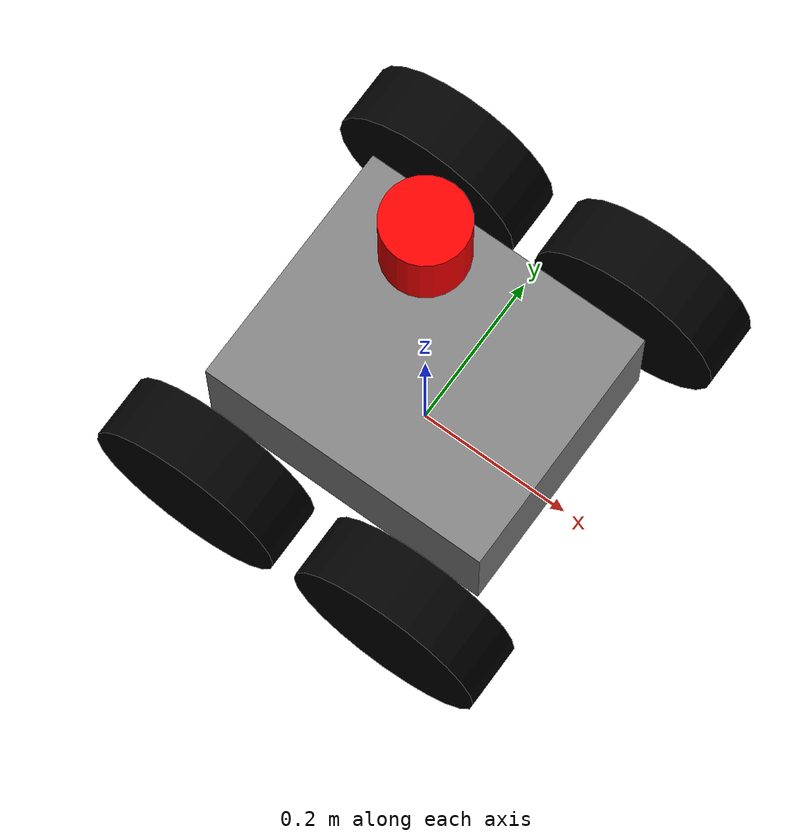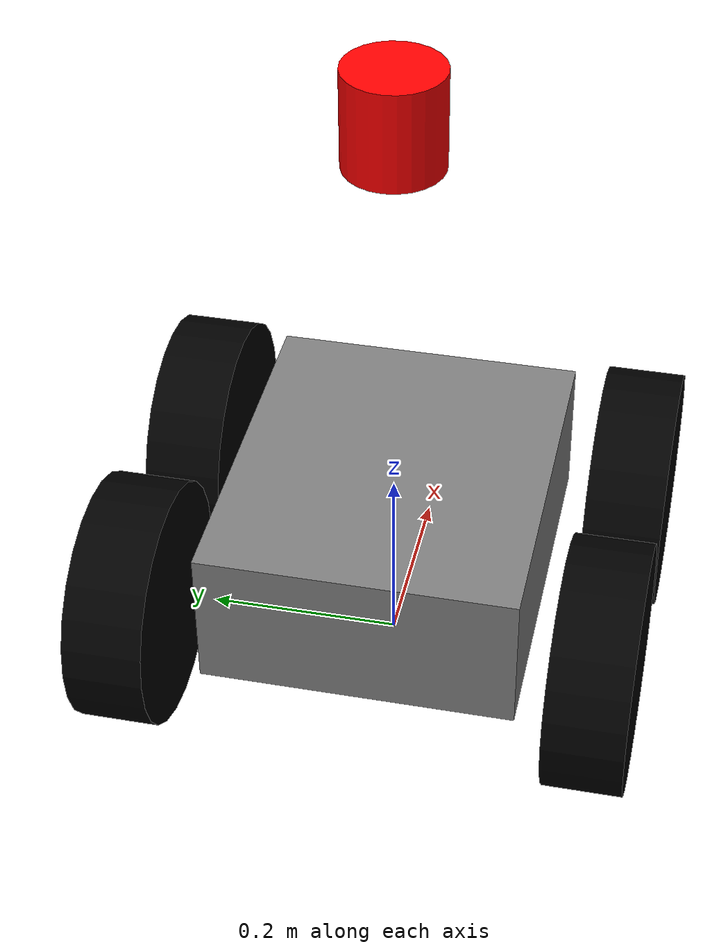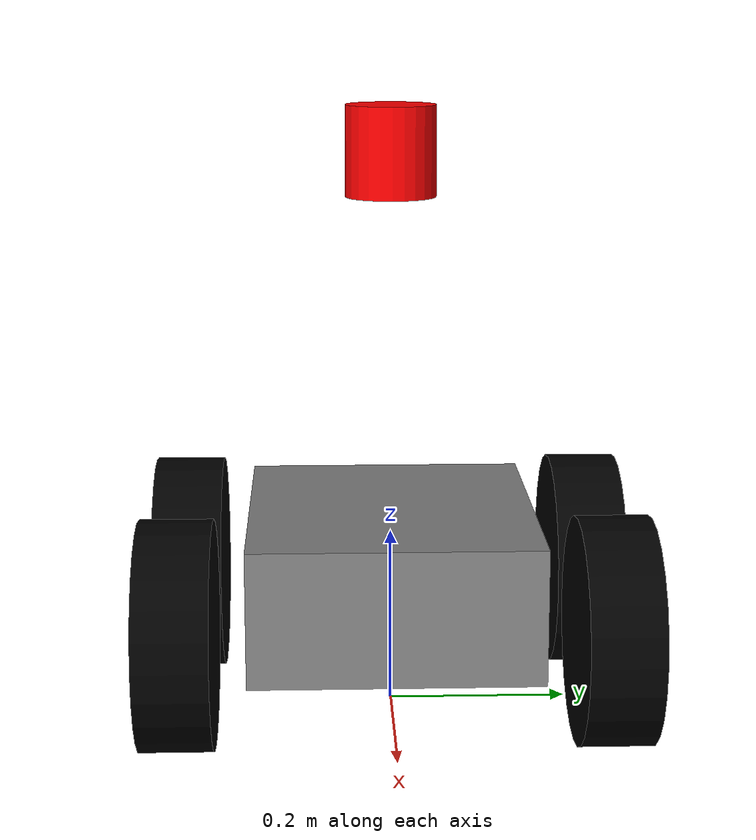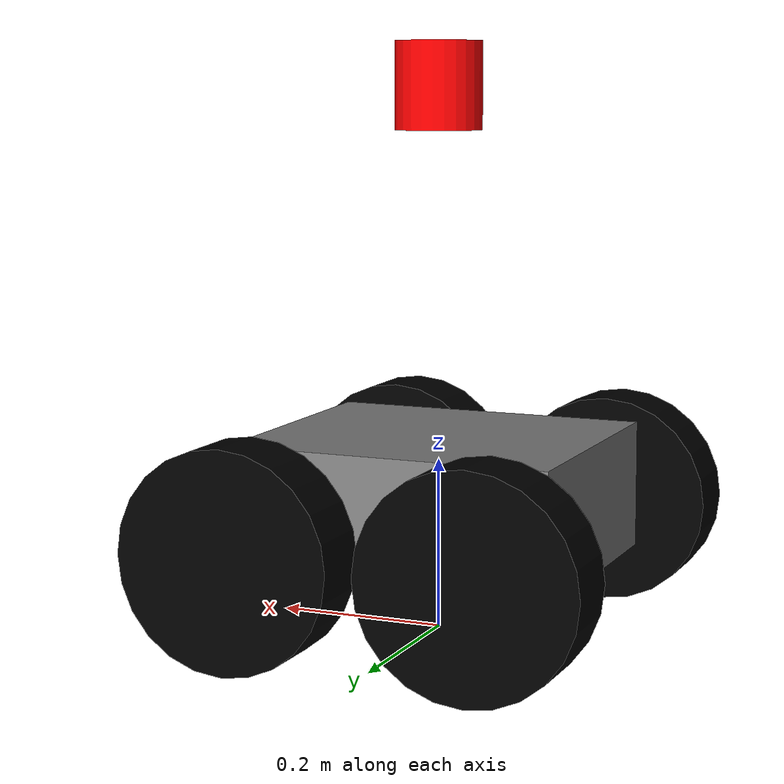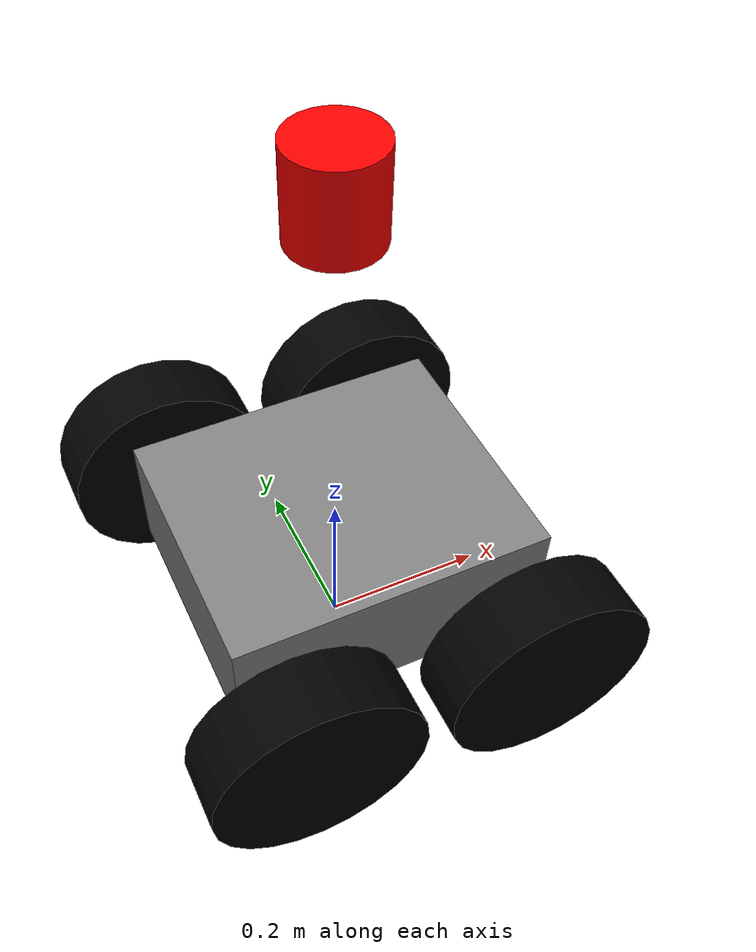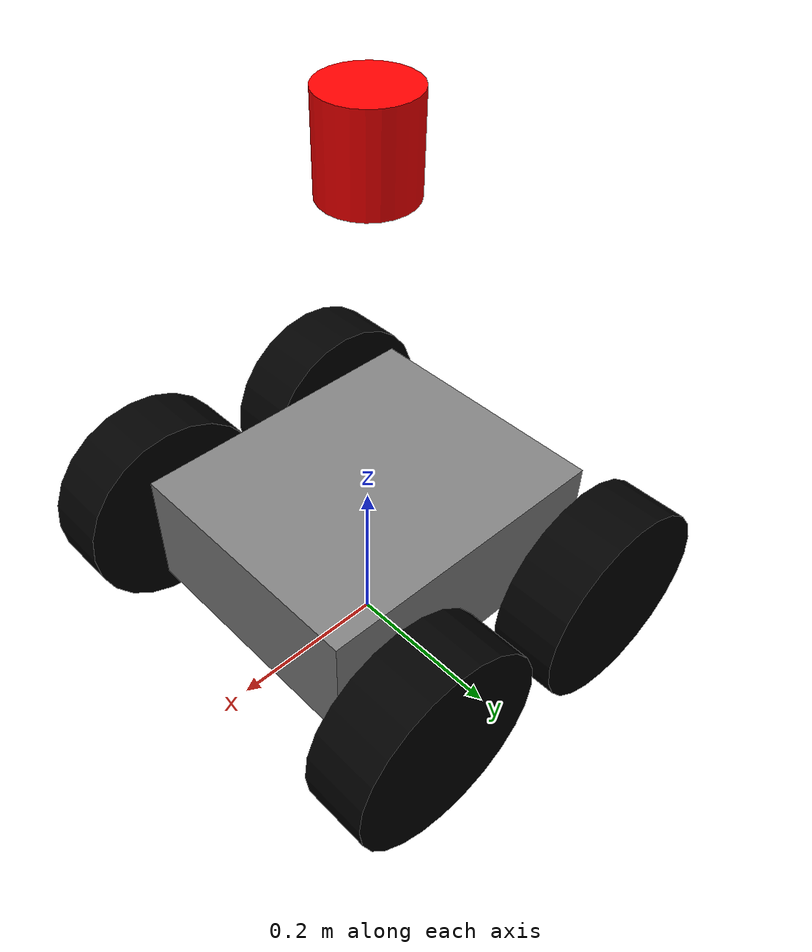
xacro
<?xml version="1.0"?>
<robot
  xmlns:xacro="http://ros.org/wiki/xacro"
  xmlns:controller="http://playerstage.sourceforge.net/gazebo/xmlschema/#controller"
  xmlns:interface="http://playerstage.sourceforge.net/gazebo/xmlschema/#interface"
  xmlns:sensor="http://playerstage.sourceforge.net/gazebo/xmlschema/#sensor"
  name="robot">

  <xacro:include filename="$(find rmcl_sim)/urdf/common.urdf.xacro" />
  <xacro:include filename="$(find rmcl_sim)/urdf/wheel.urdf.xacro" />

  <xacro:property name="M_PI" value="3.14159265359"/>

  <xacro:property name="imu_stdev" value="0.0001" />

  <xacro:property name="body_height" value="0.15"/>
  <xacro:property name="body_length" value="0.38"/>
  <xacro:property name="body_width" value="0.32"/>

  <xacro:property name="axis_front" value="0.14"/>
  <xacro:property name="axis_back" value="-0.14"/>

  <xacro:property name="wheel_thickness" value="0.08"/>
  <xacro:property name="wheel_body_offset" value="${wheel_thickness/2 + 0.035}"/>
  <xacro:property name="wheel_radius" value="0.125"/>
  <xacro:property name="axis_height" value="-0.03"/>
  <xacro:property name="axis_right" value="${-body_width/2 - wheel_body_offset}"/>
  <xacro:property name="axis_left" value="${body_width/2 + wheel_body_offset}"/>
  <xacro:property name="axis_length" value="${body_width + 2 * wheel_body_offset}" />
  <xacro:property name="turning_adaptation" value="2.95" />

  <xacro:property name="body_mass" value="25.0"/>
  <xacro:property name="wheel_mass" value="5.0"/>

  <xacro:property name="imu_width" value="0.036"/>
  <xacro:property name="imu_length" value="0.038"/>
  <xacro:property name="imu_height" value="0.012"/>

  <xacro:property name="imu_offset_x" value="0"/>
  <xacro:property name="imu_offset_y" value="0"/>
  <xacro:property name="imu_offset_z" value="${- body_height/2 + 0.005 + 0.007}"/>

  <xacro:property name="em_body_length" value="0.11"/>
  <xacro:property name="em_body_width" value="0.04"/>
  <xacro:property name="em_body_height" value="0.03"/>

  <xacro:property name="em_button_radius" value="0.0125"/>
  <xacro:property name="em_button_depth" value="0.02" />

  <link name="base_footprint"/>
  <link name="base_link">
    <visual>
      <origin xyz="0 0 0" rpy="0 0 0" />
      <geometry>
        <box size="${body_length} ${body_width} ${body_height}"/>
      </geometry>
      <material name="silver" >
        <color rgba="0.5 0.5 0.5 1" />
      </material>
    </visual>
    <collision>
      <origin xyz="0 0 0" rpy="0 0 0" />
      <geometry>
        <box size="${body_length} ${body_width} ${body_height}"/>
      </geometry>
    </collision>
    <xacro:box_inertial
      x="${body_length}"
      y="${body_width}"
      z="${body_height}"
      mass="${body_mass}"/>
  </link>

  <joint name="base_footprint_to_base_joint" type="fixed">
    <origin xyz="0 0 ${wheel_radius - axis_height}" rpy="0 0 0" />
    <parent link="base_footprint"/>
    <child link="base_link" />
  </joint>

  <xacro:wheel name="left_front_wheel" parent="base_link">
    <origin xyz="${axis_front} ${axis_left} ${axis_height}" rpy="0 0 0"/>
  </xacro:wheel>

  <xacro:wheel name="left_rear_wheel" parent="base_link">
    <origin xyz="${axis_back} ${axis_left} ${axis_height}" rpy="0 0 0" />
  </xacro:wheel>

  <xacro:wheel name="right_front_wheel" parent="base_link">
    <origin xyz="${axis_front} ${axis_right} ${axis_height}" rpy="0 0 0"/>
  </xacro:wheel>

  <xacro:wheel name="right_rear_wheel" parent="base_link">
    <origin xyz="${axis_back} ${axis_right} ${axis_height}" rpy="0 0 0" />
  </xacro:wheel>

  <link name="imu">
    <visual>
      <origin xyz="0 0 0" rpy="0 0 0" />
      <geometry>
        <box size="${imu_length} ${imu_width} ${imu_height}"/>
      </geometry>
      <material name="white" >
        <color rgba="0.8 0.8 0.8 1" />
      </material>
    </visual>
  </link>

  <joint name="imu_to_base_joint" type="fixed">
    <parent link="base_link" />
    <child link="imu" />
    <origin xyz="${imu_offset_x} ${imu_offset_y} ${imu_offset_z}" rpy="${M_PI} 0 ${M_PI/2.0}" />
  </joint>

  <link name="velodyne">
    <visual>
      <origin xyz="0 0 0" rpy="0 0 0" />
      <geometry>
        <cylinder radius="0.05" length="0.1"/>
      </geometry>
      <material name="red" >
        <color rgba="1 0 0 1" />
      </material>
    </visual>
    <collision>
      <geometry>
        <cylinder radius="0.05" length="0.1"/>
      </geometry>
    </collision>
     <xacro:cylinder_inertial
      radius="0.05"
      length="0.1"
      mass="0.1"
      />
  </link>

  <joint name="velodyne_to_base_joint" type="fixed">
    <parent link="base_link" />
    <child link="velodyne" />
    <origin xyz="0 0 ${body_height/2 + 0.4}"/>
  </joint>

  <!-- Gazebo Plugins -->
  <gazebo reference="imu" >
    <sensor name="imu" type="imu">
      <always_on>1</always_on>
      <update_rate>100</update_rate>
      <visualize>false</visualize>
      <topic>/model/robot/imu</topic>
      <frame_id>imu</frame_id>
      <gz_frame_id>imu</gz_frame_id>
      <ign_frame_id>imu</ign_frame_id>
    </sensor>
  </gazebo>

  <gazebo reference="velodyne">
    <sensor name="velodyne-vlp16" type='gpu_lidar'>"
      <pose relative_to="velodyne">0 0 0 0 0 0</pose>
      <topic>/model/robot/cloud</topic>
      <update_rate>10</update_rate>
      <ray>
        <scan>
          <horizontal>
            <samples>440</samples>
            <resolution>1</resolution>
            <min_angle>${-M_PI}</min_angle>
            <max_angle>${M_PI}</max_angle>
          </horizontal>
          <vertical>
            <samples>16</samples>
            <resolution>0.01</resolution>
            <min_angle>-${M_PI*15.0/180.0}</min_angle>
            <max_angle> ${M_PI*15.0/180.0}</max_angle>
          </vertical>
        </scan>
        <range>
          <min>0.2</min>
          <max>100.0</max>
          <resolution>0.01</resolution>
        </range>
      </ray>
      <always_on>1</always_on>
      <visualize>true</visualize>
      <frame_id>velodyne</frame_id>
      <gz_frame_id>velodyne</gz_frame_id>
      <ign_frame_id>velodyne</ign_frame_id>
    </sensor>
  </gazebo>

  <gazebo>
    <plugin
        filename="libignition-gazebo-diff-drive-system.so"
        name="ignition::gazebo::systems::DiffDrive">

      <num_wheel_pairs>2</num_wheel_pairs>
      <!-- wheels0 -->
      <left_joint>left_front_wheel</left_joint>
      <right_joint>right_front_wheel</right_joint>
      <wheel_separation>${axis_length}</wheel_separation>
      <wheel_radius>${wheel_radius}</wheel_radius>

      <!-- wheels1-->
      <left_joint>left_rear_wheel</left_joint>
      <right_joint>right_rear_wheel</right_joint>
      <wheel_separation>${axis_length}</wheel_separation>
      <wheel_radius>${wheel_radius}</wheel_radius>

      <odom_publish_frequency>50</odom_publish_frequency>
      <frame_id>odom</frame_id>
      <child_frame_id>base_footprint</child_frame_id>
      <tf_topic>/model/robot/tf_odom</tf_topic>
    </plugin>
  </gazebo>

  <gazebo>
    <plugin
      filename="libignition-gazebo-joint-state-publisher-system.so"
      name="ignition::gazebo::systems::JointStatePublisher">
      <joint_name>right_front_wheel</joint_name>
      <topic>/model/robot/joint_states</topic>
    </plugin>

    <plugin
      filename="libignition-gazebo-joint-state-publisher-system.so"
      name="ignition::gazebo::systems::JointStatePublisher">
      <joint_name>left_front_wheel</joint_name>
      <topic>/model/robot/joint_states</topic>
    </plugin>

    <plugin
      filename="libignition-gazebo-joint-state-publisher-system.so"
      name="ignition::gazebo::systems::JointStatePublisher">
      <joint_name>right_rear_wheel</joint_name>
      <topic>/model/robot/joint_states</topic>
    </plugin>

    <plugin
      filename="libignition-gazebo-joint-state-publisher-system.so"
      name="ignition::gazebo::systems::JointStatePublisher">
      <joint_name>left_rear_wheel</joint_name>
      <topic>/model/robot/joint_states</topic>
    </plugin>

  </gazebo>

  <gazebo>
    <plugin
      filename="ignition-gazebo-pose-publisher-system"
      name="gz::sim::systems::PosePublisher">
      <use_pose_vector_msg>true</use_pose_vector_msg>
      <publish_nested_model_pose>true</publish_nested_model_pose>
      <static_publisher>true</static_publisher>
    </plugin>
  </gazebo>

</robot>

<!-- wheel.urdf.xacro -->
<robot xmlns:xacro="http://ros.org/wiki/xacro" name="wheel">
    <xacro:macro name="wheel" params="name parent *joint_pose">
        <link name="${name}_link">
            <visual>
                <origin xyz="0 0 0" rpy="${M_PI/2} 0 0" />
                <geometry>
                    <cylinder length="${wheel_thickness}" radius="${wheel_radius}"/>
                </geometry>
                <material name="black" >
                    <color rgba="0.0 0.0 0.0 1.0" />
                </material>
            </visual>

            <collision>
                <origin xyz="0 0 0" rpy="${M_PI/2} 0 0" />
                <geometry>
                    <cylinder length="${wheel_thickness}" radius="${wheel_radius}"/>
                </geometry>
            </collision>

            <xacro:cylinder_inertial_with_origin radius="${wheel_radius}" length="${wheel_thickness}" mass="${wheel_mass}">
                <origin xyz="0 0 0" rpy="${M_PI/2} 0 0"/>
            </xacro:cylinder_inertial_with_origin>
        </link>

        <gazebo reference="${name}_link">
            <mu1 value="1.0"/>
            <mu2 value="1.0"/>
            <kp value="10000000.0" />
            <kd value="1.0" />
            <fdir1 value="1 0 0"/>
            <material>Gazebo/DarkGrey</material>
        </gazebo>

        <joint name="${name}" type="continuous">
            <parent link="${parent}"/>
            <child link="${name}_link"/>
            <xacro:insert_block name="joint_pose"/>
            <axis xyz="0 1 0" rpy="0 0 0" />
        </joint>

        <transmission name="${name}_trans" type="SimpleTransmission">
            <type>transmission_interface/SimpleTransmission</type>
            <actuator name="${name}_motor">
                <mechanicalReduction>7</mechanicalReduction>
                <hardwareInterface>VelocityJointInterface</hardwareInterface>
            </actuator>
            <joint name="${name}">
                <hardwareInterface>hardware_interface/VelocityJointInterface</hardwareInterface>
            </joint>
        </transmission>
    </xacro:macro>
</robot>
